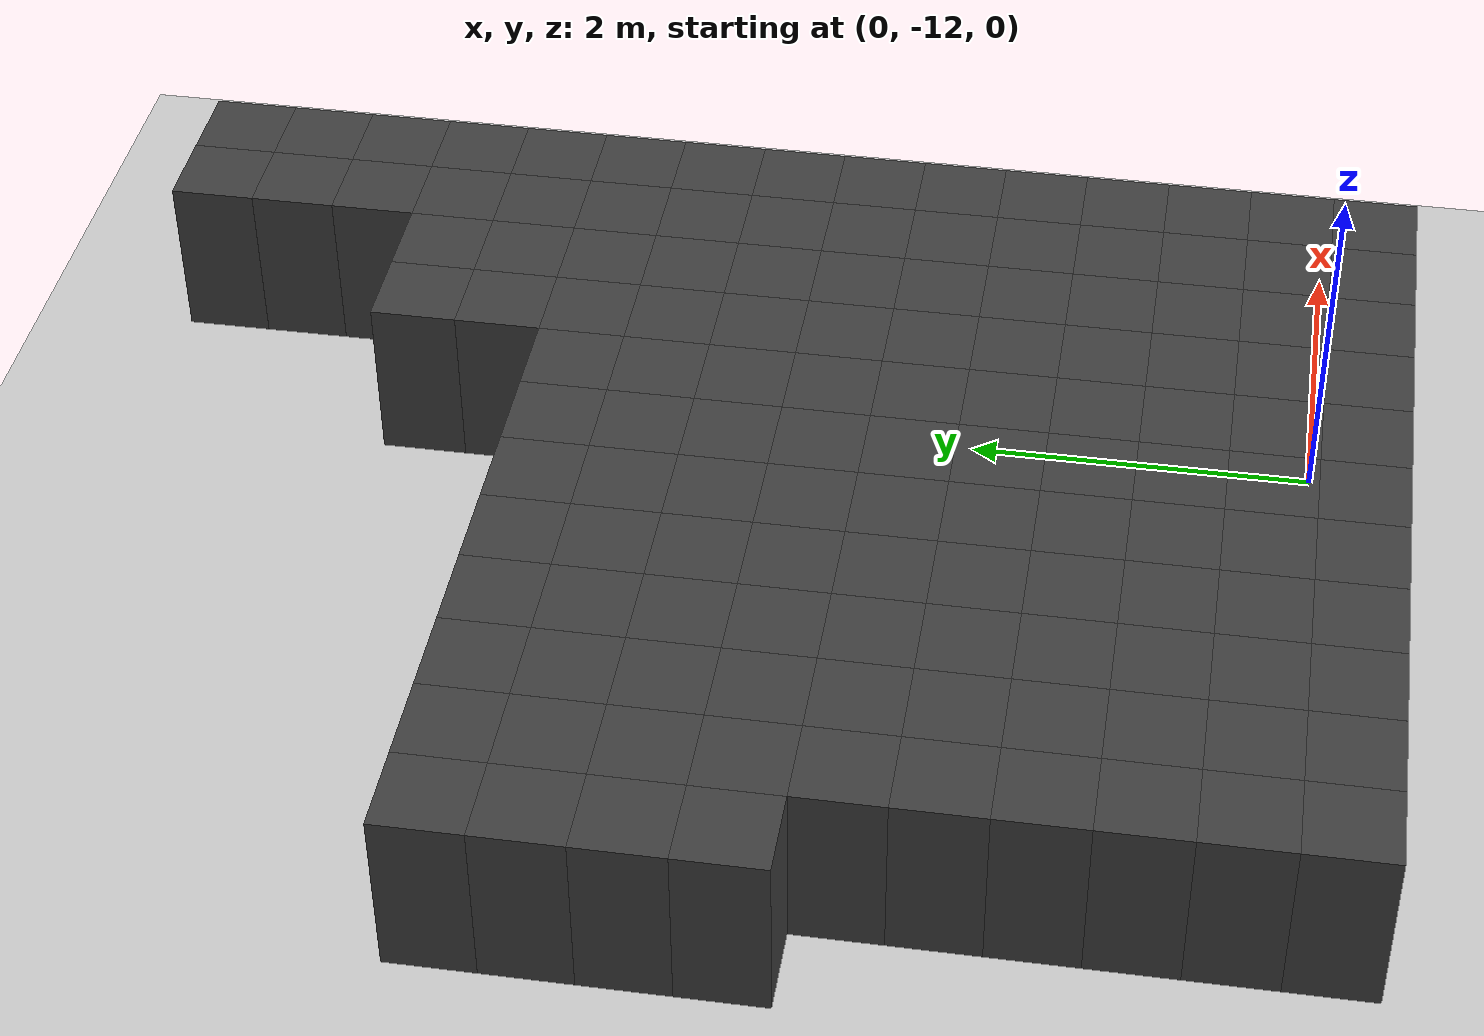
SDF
<sdf version="1.7">
 <world name="map_14735">
  <model name="ground_plane">
   <static>true</static>
   <link name="link">
    <collision name="collision">
     <geometry><plane><normal>0 0 1</normal><size>200 200</size></plane></geometry>
    </collision>
    <visual name="visual">
     <geometry><plane><normal>0 0 1</normal><size>200 200</size></plane></geometry>
     <material><ambient>0.8 0.8 0.8 1</ambient><diffuse>0.8 0.8 0.8 1</diffuse></material>
    </visual>
   </link>
  </model>
  <model name="maze_environment">
   <static>true</static>
   <link name="wall_1157">
    <pose>0.750 -5.250 0.500 0 0 0</pose>
    <collision name="col"><geometry><box><size>0.5 0.5 1.0</size></box></geometry></collision>
    <visual name="vis">
     <geometry><box><size>0.5 0.5 1.0</size></box></geometry>
     <material><ambient>0.15 0.15 0.15 1</ambient><diffuse>0.25 0.25 0.25 1</diffuse></material>
    </visual>
   </link>
   <link name="wall_1158">
    <pose>1.250 -5.250 0.500 0 0 0</pose>
    <collision name="col"><geometry><box><size>0.5 0.5 1.0</size></box></geometry></collision>
    <visual name="vis">
     <geometry><box><size>0.5 0.5 1.0</size></box></geometry>
     <material><ambient>0.15 0.15 0.15 1</ambient><diffuse>0.25 0.25 0.25 1</diffuse></material>
    </visual>
   </link>
   <link name="wall_1195">
    <pose>0.750 -5.750 0.500 0 0 0</pose>
    <collision name="col"><geometry><box><size>0.5 0.5 1.0</size></box></geometry></collision>
    <visual name="vis">
     <geometry><box><size>0.5 0.5 1.0</size></box></geometry>
     <material><ambient>0.15 0.15 0.15 1</ambient><diffuse>0.25 0.25 0.25 1</diffuse></material>
    </visual>
   </link>
   <link name="wall_1196">
    <pose>1.250 -5.750 0.500 0 0 0</pose>
    <collision name="col"><geometry><box><size>0.5 0.5 1.0</size></box></geometry></collision>
    <visual name="vis">
     <geometry><box><size>0.5 0.5 1.0</size></box></geometry>
     <material><ambient>0.15 0.15 0.15 1</ambient><diffuse>0.25 0.25 0.25 1</diffuse></material>
    </visual>
   </link>
   <link name="wall_1233">
    <pose>0.750 -6.250 0.500 0 0 0</pose>
    <collision name="col"><geometry><box><size>0.5 0.5 1.0</size></box></geometry></collision>
    <visual name="vis">
     <geometry><box><size>0.5 0.5 1.0</size></box></geometry>
     <material><ambient>0.15 0.15 0.15 1</ambient><diffuse>0.25 0.25 0.25 1</diffuse></material>
    </visual>
   </link>
   <link name="wall_1234">
    <pose>1.250 -6.250 0.500 0 0 0</pose>
    <collision name="col"><geometry><box><size>0.5 0.5 1.0</size></box></geometry></collision>
    <visual name="vis">
     <geometry><box><size>0.5 0.5 1.0</size></box></geometry>
     <material><ambient>0.15 0.15 0.15 1</ambient><diffuse>0.25 0.25 0.25 1</diffuse></material>
    </visual>
   </link>
   <link name="wall_1271">
    <pose>-0.250 -6.750 0.500 0 0 0</pose>
    <collision name="col"><geometry><box><size>0.5 0.5 1.0</size></box></geometry></collision>
    <visual name="vis">
     <geometry><box><size>0.5 0.5 1.0</size></box></geometry>
     <material><ambient>0.15 0.15 0.15 1</ambient><diffuse>0.25 0.25 0.25 1</diffuse></material>
    </visual>
   </link>
   <link name="wall_1272">
    <pose>0.250 -6.750 0.500 0 0 0</pose>
    <collision name="col"><geometry><box><size>0.5 0.5 1.0</size></box></geometry></collision>
    <visual name="vis">
     <geometry><box><size>0.5 0.5 1.0</size></box></geometry>
     <material><ambient>0.15 0.15 0.15 1</ambient><diffuse>0.25 0.25 0.25 1</diffuse></material>
    </visual>
   </link>
   <link name="wall_1273">
    <pose>0.750 -6.750 0.500 0 0 0</pose>
    <collision name="col"><geometry><box><size>0.5 0.5 1.0</size></box></geometry></collision>
    <visual name="vis">
     <geometry><box><size>0.5 0.5 1.0</size></box></geometry>
     <material><ambient>0.15 0.15 0.15 1</ambient><diffuse>0.25 0.25 0.25 1</diffuse></material>
    </visual>
   </link>
   <link name="wall_1274">
    <pose>1.250 -6.750 0.500 0 0 0</pose>
    <collision name="col"><geometry><box><size>0.5 0.5 1.0</size></box></geometry></collision>
    <visual name="vis">
     <geometry><box><size>0.5 0.5 1.0</size></box></geometry>
     <material><ambient>0.15 0.15 0.15 1</ambient><diffuse>0.25 0.25 0.25 1</diffuse></material>
    </visual>
   </link>
   <link name="wall_1312">
    <pose>-0.250 -7.250 0.500 0 0 0</pose>
    <collision name="col"><geometry><box><size>0.5 0.5 1.0</size></box></geometry></collision>
    <visual name="vis">
     <geometry><box><size>0.5 0.5 1.0</size></box></geometry>
     <material><ambient>0.15 0.15 0.15 1</ambient><diffuse>0.25 0.25 0.25 1</diffuse></material>
    </visual>
   </link>
   <link name="wall_1313">
    <pose>0.250 -7.250 0.500 0 0 0</pose>
    <collision name="col"><geometry><box><size>0.5 0.5 1.0</size></box></geometry></collision>
    <visual name="vis">
     <geometry><box><size>0.5 0.5 1.0</size></box></geometry>
     <material><ambient>0.15 0.15 0.15 1</ambient><diffuse>0.25 0.25 0.25 1</diffuse></material>
    </visual>
   </link>
   <link name="wall_1314">
    <pose>0.750 -7.250 0.500 0 0 0</pose>
    <collision name="col"><geometry><box><size>0.5 0.5 1.0</size></box></geometry></collision>
    <visual name="vis">
     <geometry><box><size>0.5 0.5 1.0</size></box></geometry>
     <material><ambient>0.15 0.15 0.15 1</ambient><diffuse>0.25 0.25 0.25 1</diffuse></material>
    </visual>
   </link>
   <link name="wall_1315">
    <pose>1.250 -7.250 0.500 0 0 0</pose>
    <collision name="col"><geometry><box><size>0.5 0.5 1.0</size></box></geometry></collision>
    <visual name="vis">
     <geometry><box><size>0.5 0.5 1.0</size></box></geometry>
     <material><ambient>0.15 0.15 0.15 1</ambient><diffuse>0.25 0.25 0.25 1</diffuse></material>
    </visual>
   </link>
   <link name="wall_1353">
    <pose>-4.250 -7.750 0.500 0 0 0</pose>
    <collision name="col"><geometry><box><size>0.5 0.5 1.0</size></box></geometry></collision>
    <visual name="vis">
     <geometry><box><size>0.5 0.5 1.0</size></box></geometry>
     <material><ambient>0.15 0.15 0.15 1</ambient><diffuse>0.25 0.25 0.25 1</diffuse></material>
    </visual>
   </link>
   <link name="wall_1354">
    <pose>-3.750 -7.750 0.500 0 0 0</pose>
    <collision name="col"><geometry><box><size>0.5 0.5 1.0</size></box></geometry></collision>
    <visual name="vis">
     <geometry><box><size>0.5 0.5 1.0</size></box></geometry>
     <material><ambient>0.15 0.15 0.15 1</ambient><diffuse>0.25 0.25 0.25 1</diffuse></material>
    </visual>
   </link>
   <link name="wall_1355">
    <pose>-3.250 -7.750 0.500 0 0 0</pose>
    <collision name="col"><geometry><box><size>0.5 0.5 1.0</size></box></geometry></collision>
    <visual name="vis">
     <geometry><box><size>0.5 0.5 1.0</size></box></geometry>
     <material><ambient>0.15 0.15 0.15 1</ambient><diffuse>0.25 0.25 0.25 1</diffuse></material>
    </visual>
   </link>
   <link name="wall_1356">
    <pose>-2.750 -7.750 0.500 0 0 0</pose>
    <collision name="col"><geometry><box><size>0.5 0.5 1.0</size></box></geometry></collision>
    <visual name="vis">
     <geometry><box><size>0.5 0.5 1.0</size></box></geometry>
     <material><ambient>0.15 0.15 0.15 1</ambient><diffuse>0.25 0.25 0.25 1</diffuse></material>
    </visual>
   </link>
   <link name="wall_1357">
    <pose>-2.250 -7.750 0.500 0 0 0</pose>
    <collision name="col"><geometry><box><size>0.5 0.5 1.0</size></box></geometry></collision>
    <visual name="vis">
     <geometry><box><size>0.5 0.5 1.0</size></box></geometry>
     <material><ambient>0.15 0.15 0.15 1</ambient><diffuse>0.25 0.25 0.25 1</diffuse></material>
    </visual>
   </link>
   <link name="wall_1358">
    <pose>-1.750 -7.750 0.500 0 0 0</pose>
    <collision name="col"><geometry><box><size>0.5 0.5 1.0</size></box></geometry></collision>
    <visual name="vis">
     <geometry><box><size>0.5 0.5 1.0</size></box></geometry>
     <material><ambient>0.15 0.15 0.15 1</ambient><diffuse>0.25 0.25 0.25 1</diffuse></material>
    </visual>
   </link>
   <link name="wall_1359">
    <pose>-1.250 -7.750 0.500 0 0 0</pose>
    <collision name="col"><geometry><box><size>0.5 0.5 1.0</size></box></geometry></collision>
    <visual name="vis">
     <geometry><box><size>0.5 0.5 1.0</size></box></geometry>
     <material><ambient>0.15 0.15 0.15 1</ambient><diffuse>0.25 0.25 0.25 1</diffuse></material>
    </visual>
   </link>
   <link name="wall_1360">
    <pose>-0.750 -7.750 0.500 0 0 0</pose>
    <collision name="col"><geometry><box><size>0.5 0.5 1.0</size></box></geometry></collision>
    <visual name="vis">
     <geometry><box><size>0.5 0.5 1.0</size></box></geometry>
     <material><ambient>0.15 0.15 0.15 1</ambient><diffuse>0.25 0.25 0.25 1</diffuse></material>
    </visual>
   </link>
   <link name="wall_1361">
    <pose>-0.250 -7.750 0.500 0 0 0</pose>
    <collision name="col"><geometry><box><size>0.5 0.5 1.0</size></box></geometry></collision>
    <visual name="vis">
     <geometry><box><size>0.5 0.5 1.0</size></box></geometry>
     <material><ambient>0.15 0.15 0.15 1</ambient><diffuse>0.25 0.25 0.25 1</diffuse></material>
    </visual>
   </link>
   <link name="wall_1362">
    <pose>0.250 -7.750 0.500 0 0 0</pose>
    <collision name="col"><geometry><box><size>0.5 0.5 1.0</size></box></geometry></collision>
    <visual name="vis">
     <geometry><box><size>0.5 0.5 1.0</size></box></geometry>
     <material><ambient>0.15 0.15 0.15 1</ambient><diffuse>0.25 0.25 0.25 1</diffuse></material>
    </visual>
   </link>
   <link name="wall_1363">
    <pose>0.750 -7.750 0.500 0 0 0</pose>
    <collision name="col"><geometry><box><size>0.5 0.5 1.0</size></box></geometry></collision>
    <visual name="vis">
     <geometry><box><size>0.5 0.5 1.0</size></box></geometry>
     <material><ambient>0.15 0.15 0.15 1</ambient><diffuse>0.25 0.25 0.25 1</diffuse></material>
    </visual>
   </link>
   <link name="wall_1364">
    <pose>1.250 -7.750 0.500 0 0 0</pose>
    <collision name="col"><geometry><box><size>0.5 0.5 1.0</size></box></geometry></collision>
    <visual name="vis">
     <geometry><box><size>0.5 0.5 1.0</size></box></geometry>
     <material><ambient>0.15 0.15 0.15 1</ambient><diffuse>0.25 0.25 0.25 1</diffuse></material>
    </visual>
   </link>
   <link name="wall_1395">
    <pose>-4.250 -8.250 0.500 0 0 0</pose>
    <collision name="col"><geometry><box><size>0.5 0.5 1.0</size></box></geometry></collision>
    <visual name="vis">
     <geometry><box><size>0.5 0.5 1.0</size></box></geometry>
     <material><ambient>0.15 0.15 0.15 1</ambient><diffuse>0.25 0.25 0.25 1</diffuse></material>
    </visual>
   </link>
   <link name="wall_1396">
    <pose>-3.750 -8.250 0.500 0 0 0</pose>
    <collision name="col"><geometry><box><size>0.5 0.5 1.0</size></box></geometry></collision>
    <visual name="vis">
     <geometry><box><size>0.5 0.5 1.0</size></box></geometry>
     <material><ambient>0.15 0.15 0.15 1</ambient><diffuse>0.25 0.25 0.25 1</diffuse></material>
    </visual>
   </link>
   <link name="wall_1397">
    <pose>-3.250 -8.250 0.500 0 0 0</pose>
    <collision name="col"><geometry><box><size>0.5 0.5 1.0</size></box></geometry></collision>
    <visual name="vis">
     <geometry><box><size>0.5 0.5 1.0</size></box></geometry>
     <material><ambient>0.15 0.15 0.15 1</ambient><diffuse>0.25 0.25 0.25 1</diffuse></material>
    </visual>
   </link>
   <link name="wall_1398">
    <pose>-2.750 -8.250 0.500 0 0 0</pose>
    <collision name="col"><geometry><box><size>0.5 0.5 1.0</size></box></geometry></collision>
    <visual name="vis">
     <geometry><box><size>0.5 0.5 1.0</size></box></geometry>
     <material><ambient>0.15 0.15 0.15 1</ambient><diffuse>0.25 0.25 0.25 1</diffuse></material>
    </visual>
   </link>
   <link name="wall_1399">
    <pose>-2.250 -8.250 0.500 0 0 0</pose>
    <collision name="col"><geometry><box><size>0.5 0.5 1.0</size></box></geometry></collision>
    <visual name="vis">
     <geometry><box><size>0.5 0.5 1.0</size></box></geometry>
     <material><ambient>0.15 0.15 0.15 1</ambient><diffuse>0.25 0.25 0.25 1</diffuse></material>
    </visual>
   </link>
   <link name="wall_1400">
    <pose>-1.750 -8.250 0.500 0 0 0</pose>
    <collision name="col"><geometry><box><size>0.5 0.5 1.0</size></box></geometry></collision>
    <visual name="vis">
     <geometry><box><size>0.5 0.5 1.0</size></box></geometry>
     <material><ambient>0.15 0.15 0.15 1</ambient><diffuse>0.25 0.25 0.25 1</diffuse></material>
    </visual>
   </link>
   <link name="wall_1401">
    <pose>-1.250 -8.250 0.500 0 0 0</pose>
    <collision name="col"><geometry><box><size>0.5 0.5 1.0</size></box></geometry></collision>
    <visual name="vis">
     <geometry><box><size>0.5 0.5 1.0</size></box></geometry>
     <material><ambient>0.15 0.15 0.15 1</ambient><diffuse>0.25 0.25 0.25 1</diffuse></material>
    </visual>
   </link>
   <link name="wall_1402">
    <pose>-0.750 -8.250 0.500 0 0 0</pose>
    <collision name="col"><geometry><box><size>0.5 0.5 1.0</size></box></geometry></collision>
    <visual name="vis">
     <geometry><box><size>0.5 0.5 1.0</size></box></geometry>
     <material><ambient>0.15 0.15 0.15 1</ambient><diffuse>0.25 0.25 0.25 1</diffuse></material>
    </visual>
   </link>
   <link name="wall_1403">
    <pose>-0.250 -8.250 0.500 0 0 0</pose>
    <collision name="col"><geometry><box><size>0.5 0.5 1.0</size></box></geometry></collision>
    <visual name="vis">
     <geometry><box><size>0.5 0.5 1.0</size></box></geometry>
     <material><ambient>0.15 0.15 0.15 1</ambient><diffuse>0.25 0.25 0.25 1</diffuse></material>
    </visual>
   </link>
   <link name="wall_1404">
    <pose>0.250 -8.250 0.500 0 0 0</pose>
    <collision name="col"><geometry><box><size>0.5 0.5 1.0</size></box></geometry></collision>
    <visual name="vis">
     <geometry><box><size>0.5 0.5 1.0</size></box></geometry>
     <material><ambient>0.15 0.15 0.15 1</ambient><diffuse>0.25 0.25 0.25 1</diffuse></material>
    </visual>
   </link>
   <link name="wall_1405">
    <pose>0.750 -8.250 0.500 0 0 0</pose>
    <collision name="col"><geometry><box><size>0.5 0.5 1.0</size></box></geometry></collision>
    <visual name="vis">
     <geometry><box><size>0.5 0.5 1.0</size></box></geometry>
     <material><ambient>0.15 0.15 0.15 1</ambient><diffuse>0.25 0.25 0.25 1</diffuse></material>
    </visual>
   </link>
   <link name="wall_1406">
    <pose>1.250 -8.250 0.500 0 0 0</pose>
    <collision name="col"><geometry><box><size>0.5 0.5 1.0</size></box></geometry></collision>
    <visual name="vis">
     <geometry><box><size>0.5 0.5 1.0</size></box></geometry>
     <material><ambient>0.15 0.15 0.15 1</ambient><diffuse>0.25 0.25 0.25 1</diffuse></material>
    </visual>
   </link>
   <link name="wall_1437">
    <pose>-4.250 -8.750 0.500 0 0 0</pose>
    <collision name="col"><geometry><box><size>0.5 0.5 1.0</size></box></geometry></collision>
    <visual name="vis">
     <geometry><box><size>0.5 0.5 1.0</size></box></geometry>
     <material><ambient>0.15 0.15 0.15 1</ambient><diffuse>0.25 0.25 0.25 1</diffuse></material>
    </visual>
   </link>
   <link name="wall_1438">
    <pose>-3.750 -8.750 0.500 0 0 0</pose>
    <collision name="col"><geometry><box><size>0.5 0.5 1.0</size></box></geometry></collision>
    <visual name="vis">
     <geometry><box><size>0.5 0.5 1.0</size></box></geometry>
     <material><ambient>0.15 0.15 0.15 1</ambient><diffuse>0.25 0.25 0.25 1</diffuse></material>
    </visual>
   </link>
   <link name="wall_1439">
    <pose>-3.250 -8.750 0.500 0 0 0</pose>
    <collision name="col"><geometry><box><size>0.5 0.5 1.0</size></box></geometry></collision>
    <visual name="vis">
     <geometry><box><size>0.5 0.5 1.0</size></box></geometry>
     <material><ambient>0.15 0.15 0.15 1</ambient><diffuse>0.25 0.25 0.25 1</diffuse></material>
    </visual>
   </link>
   <link name="wall_1440">
    <pose>-2.750 -8.750 0.500 0 0 0</pose>
    <collision name="col"><geometry><box><size>0.5 0.5 1.0</size></box></geometry></collision>
    <visual name="vis">
     <geometry><box><size>0.5 0.5 1.0</size></box></geometry>
     <material><ambient>0.15 0.15 0.15 1</ambient><diffuse>0.25 0.25 0.25 1</diffuse></material>
    </visual>
   </link>
   <link name="wall_1441">
    <pose>-2.250 -8.750 0.500 0 0 0</pose>
    <collision name="col"><geometry><box><size>0.5 0.5 1.0</size></box></geometry></collision>
    <visual name="vis">
     <geometry><box><size>0.5 0.5 1.0</size></box></geometry>
     <material><ambient>0.15 0.15 0.15 1</ambient><diffuse>0.25 0.25 0.25 1</diffuse></material>
    </visual>
   </link>
   <link name="wall_1442">
    <pose>-1.750 -8.750 0.500 0 0 0</pose>
    <collision name="col"><geometry><box><size>0.5 0.5 1.0</size></box></geometry></collision>
    <visual name="vis">
     <geometry><box><size>0.5 0.5 1.0</size></box></geometry>
     <material><ambient>0.15 0.15 0.15 1</ambient><diffuse>0.25 0.25 0.25 1</diffuse></material>
    </visual>
   </link>
   <link name="wall_1443">
    <pose>-1.250 -8.750 0.500 0 0 0</pose>
    <collision name="col"><geometry><box><size>0.5 0.5 1.0</size></box></geometry></collision>
    <visual name="vis">
     <geometry><box><size>0.5 0.5 1.0</size></box></geometry>
     <material><ambient>0.15 0.15 0.15 1</ambient><diffuse>0.25 0.25 0.25 1</diffuse></material>
    </visual>
   </link>
   <link name="wall_1444">
    <pose>-0.750 -8.750 0.500 0 0 0</pose>
    <collision name="col"><geometry><box><size>0.5 0.5 1.0</size></box></geometry></collision>
    <visual name="vis">
     <geometry><box><size>0.5 0.5 1.0</size></box></geometry>
     <material><ambient>0.15 0.15 0.15 1</ambient><diffuse>0.25 0.25 0.25 1</diffuse></material>
    </visual>
   </link>
   <link name="wall_1445">
    <pose>-0.250 -8.750 0.500 0 0 0</pose>
    <collision name="col"><geometry><box><size>0.5 0.5 1.0</size></box></geometry></collision>
    <visual name="vis">
     <geometry><box><size>0.5 0.5 1.0</size></box></geometry>
     <material><ambient>0.15 0.15 0.15 1</ambient><diffuse>0.25 0.25 0.25 1</diffuse></material>
    </visual>
   </link>
   <link name="wall_1446">
    <pose>0.250 -8.750 0.500 0 0 0</pose>
    <collision name="col"><geometry><box><size>0.5 0.5 1.0</size></box></geometry></collision>
    <visual name="vis">
     <geometry><box><size>0.5 0.5 1.0</size></box></geometry>
     <material><ambient>0.15 0.15 0.15 1</ambient><diffuse>0.25 0.25 0.25 1</diffuse></material>
    </visual>
   </link>
   <link name="wall_1447">
    <pose>0.750 -8.750 0.500 0 0 0</pose>
    <collision name="col"><geometry><box><size>0.5 0.5 1.0</size></box></geometry></collision>
    <visual name="vis">
     <geometry><box><size>0.5 0.5 1.0</size></box></geometry>
     <material><ambient>0.15 0.15 0.15 1</ambient><diffuse>0.25 0.25 0.25 1</diffuse></material>
    </visual>
   </link>
   <link name="wall_1448">
    <pose>1.250 -8.750 0.500 0 0 0</pose>
    <collision name="col"><geometry><box><size>0.5 0.5 1.0</size></box></geometry></collision>
    <visual name="vis">
     <geometry><box><size>0.5 0.5 1.0</size></box></geometry>
     <material><ambient>0.15 0.15 0.15 1</ambient><diffuse>0.25 0.25 0.25 1</diffuse></material>
    </visual>
   </link>
   <link name="wall_1479">
    <pose>-4.250 -9.250 0.500 0 0 0</pose>
    <collision name="col"><geometry><box><size>0.5 0.5 1.0</size></box></geometry></collision>
    <visual name="vis">
     <geometry><box><size>0.5 0.5 1.0</size></box></geometry>
     <material><ambient>0.15 0.15 0.15 1</ambient><diffuse>0.25 0.25 0.25 1</diffuse></material>
    </visual>
   </link>
   <link name="wall_1480">
    <pose>-3.750 -9.250 0.500 0 0 0</pose>
    <collision name="col"><geometry><box><size>0.5 0.5 1.0</size></box></geometry></collision>
    <visual name="vis">
     <geometry><box><size>0.5 0.5 1.0</size></box></geometry>
     <material><ambient>0.15 0.15 0.15 1</ambient><diffuse>0.25 0.25 0.25 1</diffuse></material>
    </visual>
   </link>
   <link name="wall_1481">
    <pose>-3.250 -9.250 0.500 0 0 0</pose>
    <collision name="col"><geometry><box><size>0.5 0.5 1.0</size></box></geometry></collision>
    <visual name="vis">
     <geometry><box><size>0.5 0.5 1.0</size></box></geometry>
     <material><ambient>0.15 0.15 0.15 1</ambient><diffuse>0.25 0.25 0.25 1</diffuse></material>
    </visual>
   </link>
   <link name="wall_1482">
    <pose>-2.750 -9.250 0.500 0 0 0</pose>
    <collision name="col"><geometry><box><size>0.5 0.5 1.0</size></box></geometry></collision>
    <visual name="vis">
     <geometry><box><size>0.5 0.5 1.0</size></box></geometry>
     <material><ambient>0.15 0.15 0.15 1</ambient><diffuse>0.25 0.25 0.25 1</diffuse></material>
    </visual>
   </link>
   <link name="wall_1483">
    <pose>-2.250 -9.250 0.500 0 0 0</pose>
    <collision name="col"><geometry><box><size>0.5 0.5 1.0</size></box></geometry></collision>
    <visual name="vis">
     <geometry><box><size>0.5 0.5 1.0</size></box></geometry>
     <material><ambient>0.15 0.15 0.15 1</ambient><diffuse>0.25 0.25 0.25 1</diffuse></material>
    </visual>
   </link>
   <link name="wall_1484">
    <pose>-1.750 -9.250 0.500 0 0 0</pose>
    <collision name="col"><geometry><box><size>0.5 0.5 1.0</size></box></geometry></collision>
    <visual name="vis">
     <geometry><box><size>0.5 0.5 1.0</size></box></geometry>
     <material><ambient>0.15 0.15 0.15 1</ambient><diffuse>0.25 0.25 0.25 1</diffuse></material>
    </visual>
   </link>
   <link name="wall_1485">
    <pose>-1.250 -9.250 0.500 0 0 0</pose>
    <collision name="col"><geometry><box><size>0.5 0.5 1.0</size></box></geometry></collision>
    <visual name="vis">
     <geometry><box><size>0.5 0.5 1.0</size></box></geometry>
     <material><ambient>0.15 0.15 0.15 1</ambient><diffuse>0.25 0.25 0.25 1</diffuse></material>
    </visual>
   </link>
   <link name="wall_1486">
    <pose>-0.750 -9.250 0.500 0 0 0</pose>
    <collision name="col"><geometry><box><size>0.5 0.5 1.0</size></box></geometry></collision>
    <visual name="vis">
     <geometry><box><size>0.5 0.5 1.0</size></box></geometry>
     <material><ambient>0.15 0.15 0.15 1</ambient><diffuse>0.25 0.25 0.25 1</diffuse></material>
    </visual>
   </link>
   <link name="wall_1487">
    <pose>-0.250 -9.250 0.500 0 0 0</pose>
    <collision name="col"><geometry><box><size>0.5 0.5 1.0</size></box></geometry></collision>
    <visual name="vis">
     <geometry><box><size>0.5 0.5 1.0</size></box></geometry>
     <material><ambient>0.15 0.15 0.15 1</ambient><diffuse>0.25 0.25 0.25 1</diffuse></material>
    </visual>
   </link>
   <link name="wall_1488">
    <pose>0.250 -9.250 0.500 0 0 0</pose>
    <collision name="col"><geometry><box><size>0.5 0.5 1.0</size></box></geometry></collision>
    <visual name="vis">
     <geometry><box><size>0.5 0.5 1.0</size></box></geometry>
     <material><ambient>0.15 0.15 0.15 1</ambient><diffuse>0.25 0.25 0.25 1</diffuse></material>
    </visual>
   </link>
   <link name="wall_1489">
    <pose>0.750 -9.250 0.500 0 0 0</pose>
    <collision name="col"><geometry><box><size>0.5 0.5 1.0</size></box></geometry></collision>
    <visual name="vis">
     <geometry><box><size>0.5 0.5 1.0</size></box></geometry>
     <material><ambient>0.15 0.15 0.15 1</ambient><diffuse>0.25 0.25 0.25 1</diffuse></material>
    </visual>
   </link>
   <link name="wall_1490">
    <pose>1.250 -9.250 0.500 0 0 0</pose>
    <collision name="col"><geometry><box><size>0.5 0.5 1.0</size></box></geometry></collision>
    <visual name="vis">
     <geometry><box><size>0.5 0.5 1.0</size></box></geometry>
     <material><ambient>0.15 0.15 0.15 1</ambient><diffuse>0.25 0.25 0.25 1</diffuse></material>
    </visual>
   </link>
   <link name="wall_1522">
    <pose>-3.750 -9.750 0.500 0 0 0</pose>
    <collision name="col"><geometry><box><size>0.5 0.5 1.0</size></box></geometry></collision>
    <visual name="vis">
     <geometry><box><size>0.5 0.5 1.0</size></box></geometry>
     <material><ambient>0.15 0.15 0.15 1</ambient><diffuse>0.25 0.25 0.25 1</diffuse></material>
    </visual>
   </link>
   <link name="wall_1523">
    <pose>-3.250 -9.750 0.500 0 0 0</pose>
    <collision name="col"><geometry><box><size>0.5 0.5 1.0</size></box></geometry></collision>
    <visual name="vis">
     <geometry><box><size>0.5 0.5 1.0</size></box></geometry>
     <material><ambient>0.15 0.15 0.15 1</ambient><diffuse>0.25 0.25 0.25 1</diffuse></material>
    </visual>
   </link>
   <link name="wall_1524">
    <pose>-2.750 -9.750 0.500 0 0 0</pose>
    <collision name="col"><geometry><box><size>0.5 0.5 1.0</size></box></geometry></collision>
    <visual name="vis">
     <geometry><box><size>0.5 0.5 1.0</size></box></geometry>
     <material><ambient>0.15 0.15 0.15 1</ambient><diffuse>0.25 0.25 0.25 1</diffuse></material>
    </visual>
   </link>
   <link name="wall_1525">
    <pose>-2.250 -9.750 0.500 0 0 0</pose>
    <collision name="col"><geometry><box><size>0.5 0.5 1.0</size></box></geometry></collision>
    <visual name="vis">
     <geometry><box><size>0.5 0.5 1.0</size></box></geometry>
     <material><ambient>0.15 0.15 0.15 1</ambient><diffuse>0.25 0.25 0.25 1</diffuse></material>
    </visual>
   </link>
   <link name="wall_1526">
    <pose>-1.750 -9.750 0.500 0 0 0</pose>
    <collision name="col"><geometry><box><size>0.5 0.5 1.0</size></box></geometry></collision>
    <visual name="vis">
     <geometry><box><size>0.5 0.5 1.0</size></box></geometry>
     <material><ambient>0.15 0.15 0.15 1</ambient><diffuse>0.25 0.25 0.25 1</diffuse></material>
    </visual>
   </link>
   <link name="wall_1527">
    <pose>-1.250 -9.750 0.500 0 0 0</pose>
    <collision name="col"><geometry><box><size>0.5 0.5 1.0</size></box></geometry></collision>
    <visual name="vis">
     <geometry><box><size>0.5 0.5 1.0</size></box></geometry>
     <material><ambient>0.15 0.15 0.15 1</ambient><diffuse>0.25 0.25 0.25 1</diffuse></material>
    </visual>
   </link>
   <link name="wall_1528">
    <pose>-0.750 -9.750 0.500 0 0 0</pose>
    <collision name="col"><geometry><box><size>0.5 0.5 1.0</size></box></geometry></collision>
    <visual name="vis">
     <geometry><box><size>0.5 0.5 1.0</size></box></geometry>
     <material><ambient>0.15 0.15 0.15 1</ambient><diffuse>0.25 0.25 0.25 1</diffuse></material>
    </visual>
   </link>
   <link name="wall_1529">
    <pose>-0.250 -9.750 0.500 0 0 0</pose>
    <collision name="col"><geometry><box><size>0.5 0.5 1.0</size></box></geometry></collision>
    <visual name="vis">
     <geometry><box><size>0.5 0.5 1.0</size></box></geometry>
     <material><ambient>0.15 0.15 0.15 1</ambient><diffuse>0.25 0.25 0.25 1</diffuse></material>
    </visual>
   </link>
   <link name="wall_1530">
    <pose>0.250 -9.750 0.500 0 0 0</pose>
    <collision name="col"><geometry><box><size>0.5 0.5 1.0</size></box></geometry></collision>
    <visual name="vis">
     <geometry><box><size>0.5 0.5 1.0</size></box></geometry>
     <material><ambient>0.15 0.15 0.15 1</ambient><diffuse>0.25 0.25 0.25 1</diffuse></material>
    </visual>
   </link>
   <link name="wall_1531">
    <pose>0.750 -9.750 0.500 0 0 0</pose>
    <collision name="col"><geometry><box><size>0.5 0.5 1.0</size></box></geometry></collision>
    <visual name="vis">
     <geometry><box><size>0.5 0.5 1.0</size></box></geometry>
     <material><ambient>0.15 0.15 0.15 1</ambient><diffuse>0.25 0.25 0.25 1</diffuse></material>
    </visual>
   </link>
   <link name="wall_1532">
    <pose>1.250 -9.750 0.500 0 0 0</pose>
    <collision name="col"><geometry><box><size>0.5 0.5 1.0</size></box></geometry></collision>
    <visual name="vis">
     <geometry><box><size>0.5 0.5 1.0</size></box></geometry>
     <material><ambient>0.15 0.15 0.15 1</ambient><diffuse>0.25 0.25 0.25 1</diffuse></material>
    </visual>
   </link>
   <link name="wall_1571">
    <pose>-3.750 -10.250 0.500 0 0 0</pose>
    <collision name="col"><geometry><box><size>0.5 0.5 1.0</size></box></geometry></collision>
    <visual name="vis">
     <geometry><box><size>0.5 0.5 1.0</size></box></geometry>
     <material><ambient>0.15 0.15 0.15 1</ambient><diffuse>0.25 0.25 0.25 1</diffuse></material>
    </visual>
   </link>
   <link name="wall_1572">
    <pose>-3.250 -10.250 0.500 0 0 0</pose>
    <collision name="col"><geometry><box><size>0.5 0.5 1.0</size></box></geometry></collision>
    <visual name="vis">
     <geometry><box><size>0.5 0.5 1.0</size></box></geometry>
     <material><ambient>0.15 0.15 0.15 1</ambient><diffuse>0.25 0.25 0.25 1</diffuse></material>
    </visual>
   </link>
   <link name="wall_1573">
    <pose>-2.750 -10.250 0.500 0 0 0</pose>
    <collision name="col"><geometry><box><size>0.5 0.5 1.0</size></box></geometry></collision>
    <visual name="vis">
     <geometry><box><size>0.5 0.5 1.0</size></box></geometry>
     <material><ambient>0.15 0.15 0.15 1</ambient><diffuse>0.25 0.25 0.25 1</diffuse></material>
    </visual>
   </link>
   <link name="wall_1574">
    <pose>-2.250 -10.250 0.500 0 0 0</pose>
    <collision name="col"><geometry><box><size>0.5 0.5 1.0</size></box></geometry></collision>
    <visual name="vis">
     <geometry><box><size>0.5 0.5 1.0</size></box></geometry>
     <material><ambient>0.15 0.15 0.15 1</ambient><diffuse>0.25 0.25 0.25 1</diffuse></material>
    </visual>
   </link>
   <link name="wall_1575">
    <pose>-1.750 -10.250 0.500 0 0 0</pose>
    <collision name="col"><geometry><box><size>0.5 0.5 1.0</size></box></geometry></collision>
    <visual name="vis">
     <geometry><box><size>0.5 0.5 1.0</size></box></geometry>
     <material><ambient>0.15 0.15 0.15 1</ambient><diffuse>0.25 0.25 0.25 1</diffuse></material>
    </visual>
   </link>
   <link name="wall_1576">
    <pose>-1.250 -10.250 0.500 0 0 0</pose>
    <collision name="col"><geometry><box><size>0.5 0.5 1.0</size></box></geometry></collision>
    <visual name="vis">
     <geometry><box><size>0.5 0.5 1.0</size></box></geometry>
     <material><ambient>0.15 0.15 0.15 1</ambient><diffuse>0.25 0.25 0.25 1</diffuse></material>
    </visual>
   </link>
   <link name="wall_1577">
    <pose>-0.750 -10.250 0.500 0 0 0</pose>
    <collision name="col"><geometry><box><size>0.5 0.5 1.0</size></box></geometry></collision>
    <visual name="vis">
     <geometry><box><size>0.5 0.5 1.0</size></box></geometry>
     <material><ambient>0.15 0.15 0.15 1</ambient><diffuse>0.25 0.25 0.25 1</diffuse></material>
    </visual>
   </link>
   <link name="wall_1578">
    <pose>-0.250 -10.250 0.500 0 0 0</pose>
    <collision name="col"><geometry><box><size>0.5 0.5 1.0</size></box></geometry></collision>
    <visual name="vis">
     <geometry><box><size>0.5 0.5 1.0</size></box></geometry>
     <material><ambient>0.15 0.15 0.15 1</ambient><diffuse>0.25 0.25 0.25 1</diffuse></material>
    </visual>
   </link>
   <link name="wall_1579">
    <pose>0.250 -10.250 0.500 0 0 0</pose>
    <collision name="col"><geometry><box><size>0.5 0.5 1.0</size></box></geometry></collision>
    <visual name="vis">
     <geometry><box><size>0.5 0.5 1.0</size></box></geometry>
     <material><ambient>0.15 0.15 0.15 1</ambient><diffuse>0.25 0.25 0.25 1</diffuse></material>
    </visual>
   </link>
   <link name="wall_1580">
    <pose>0.750 -10.250 0.500 0 0 0</pose>
    <collision name="col"><geometry><box><size>0.5 0.5 1.0</size></box></geometry></collision>
    <visual name="vis">
     <geometry><box><size>0.5 0.5 1.0</size></box></geometry>
     <material><ambient>0.15 0.15 0.15 1</ambient><diffuse>0.25 0.25 0.25 1</diffuse></material>
    </visual>
   </link>
   <link name="wall_1581">
    <pose>1.250 -10.250 0.500 0 0 0</pose>
    <collision name="col"><geometry><box><size>0.5 0.5 1.0</size></box></geometry></collision>
    <visual name="vis">
     <geometry><box><size>0.5 0.5 1.0</size></box></geometry>
     <material><ambient>0.15 0.15 0.15 1</ambient><diffuse>0.25 0.25 0.25 1</diffuse></material>
    </visual>
   </link>
   <link name="wall_1620">
    <pose>-3.750 -10.750 0.500 0 0 0</pose>
    <collision name="col"><geometry><box><size>0.5 0.5 1.0</size></box></geometry></collision>
    <visual name="vis">
     <geometry><box><size>0.5 0.5 1.0</size></box></geometry>
     <material><ambient>0.15 0.15 0.15 1</ambient><diffuse>0.25 0.25 0.25 1</diffuse></material>
    </visual>
   </link>
   <link name="wall_1621">
    <pose>-3.250 -10.750 0.500 0 0 0</pose>
    <collision name="col"><geometry><box><size>0.5 0.5 1.0</size></box></geometry></collision>
    <visual name="vis">
     <geometry><box><size>0.5 0.5 1.0</size></box></geometry>
     <material><ambient>0.15 0.15 0.15 1</ambient><diffuse>0.25 0.25 0.25 1</diffuse></material>
    </visual>
   </link>
   <link name="wall_1622">
    <pose>-2.750 -10.750 0.500 0 0 0</pose>
    <collision name="col"><geometry><box><size>0.5 0.5 1.0</size></box></geometry></collision>
    <visual name="vis">
     <geometry><box><size>0.5 0.5 1.0</size></box></geometry>
     <material><ambient>0.15 0.15 0.15 1</ambient><diffuse>0.25 0.25 0.25 1</diffuse></material>
    </visual>
   </link>
   <link name="wall_1623">
    <pose>-2.250 -10.750 0.500 0 0 0</pose>
    <collision name="col"><geometry><box><size>0.5 0.5 1.0</size></box></geometry></collision>
    <visual name="vis">
     <geometry><box><size>0.5 0.5 1.0</size></box></geometry>
     <material><ambient>0.15 0.15 0.15 1</ambient><diffuse>0.25 0.25 0.25 1</diffuse></material>
    </visual>
   </link>
   <link name="wall_1624">
    <pose>-1.750 -10.750 0.500 0 0 0</pose>
    <collision name="col"><geometry><box><size>0.5 0.5 1.0</size></box></geometry></collision>
    <visual name="vis">
     <geometry><box><size>0.5 0.5 1.0</size></box></geometry>
     <material><ambient>0.15 0.15 0.15 1</ambient><diffuse>0.25 0.25 0.25 1</diffuse></material>
    </visual>
   </link>
   <link name="wall_1625">
    <pose>-1.250 -10.750 0.500 0 0 0</pose>
    <collision name="col"><geometry><box><size>0.5 0.5 1.0</size></box></geometry></collision>
    <visual name="vis">
     <geometry><box><size>0.5 0.5 1.0</size></box></geometry>
     <material><ambient>0.15 0.15 0.15 1</ambient><diffuse>0.25 0.25 0.25 1</diffuse></material>
    </visual>
   </link>
   <link name="wall_1626">
    <pose>-0.750 -10.750 0.500 0 0 0</pose>
    <collision name="col"><geometry><box><size>0.5 0.5 1.0</size></box></geometry></collision>
    <visual name="vis">
     <geometry><box><size>0.5 0.5 1.0</size></box></geometry>
     <material><ambient>0.15 0.15 0.15 1</ambient><diffuse>0.25 0.25 0.25 1</diffuse></material>
    </visual>
   </link>
   <link name="wall_1627">
    <pose>-0.250 -10.750 0.500 0 0 0</pose>
    <collision name="col"><geometry><box><size>0.5 0.5 1.0</size></box></geometry></collision>
    <visual name="vis">
     <geometry><box><size>0.5 0.5 1.0</size></box></geometry>
     <material><ambient>0.15 0.15 0.15 1</ambient><diffuse>0.25 0.25 0.25 1</diffuse></material>
    </visual>
   </link>
   <link name="wall_1628">
    <pose>0.250 -10.750 0.500 0 0 0</pose>
    <collision name="col"><geometry><box><size>0.5 0.5 1.0</size></box></geometry></collision>
    <visual name="vis">
     <geometry><box><size>0.5 0.5 1.0</size></box></geometry>
     <material><ambient>0.15 0.15 0.15 1</ambient><diffuse>0.25 0.25 0.25 1</diffuse></material>
    </visual>
   </link>
   <link name="wall_1629">
    <pose>0.750 -10.750 0.500 0 0 0</pose>
    <collision name="col"><geometry><box><size>0.5 0.5 1.0</size></box></geometry></collision>
    <visual name="vis">
     <geometry><box><size>0.5 0.5 1.0</size></box></geometry>
     <material><ambient>0.15 0.15 0.15 1</ambient><diffuse>0.25 0.25 0.25 1</diffuse></material>
    </visual>
   </link>
   <link name="wall_1630">
    <pose>1.250 -10.750 0.500 0 0 0</pose>
    <collision name="col"><geometry><box><size>0.5 0.5 1.0</size></box></geometry></collision>
    <visual name="vis">
     <geometry><box><size>0.5 0.5 1.0</size></box></geometry>
     <material><ambient>0.15 0.15 0.15 1</ambient><diffuse>0.25 0.25 0.25 1</diffuse></material>
    </visual>
   </link>
   <link name="wall_1666">
    <pose>-3.750 -11.250 0.500 0 0 0</pose>
    <collision name="col"><geometry><box><size>0.5 0.5 1.0</size></box></geometry></collision>
    <visual name="vis">
     <geometry><box><size>0.5 0.5 1.0</size></box></geometry>
     <material><ambient>0.15 0.15 0.15 1</ambient><diffuse>0.25 0.25 0.25 1</diffuse></material>
    </visual>
   </link>
   <link name="wall_1667">
    <pose>-3.250 -11.250 0.500 0 0 0</pose>
    <collision name="col"><geometry><box><size>0.5 0.5 1.0</size></box></geometry></collision>
    <visual name="vis">
     <geometry><box><size>0.5 0.5 1.0</size></box></geometry>
     <material><ambient>0.15 0.15 0.15 1</ambient><diffuse>0.25 0.25 0.25 1</diffuse></material>
    </visual>
   </link>
   <link name="wall_1668">
    <pose>-2.750 -11.250 0.500 0 0 0</pose>
    <collision name="col"><geometry><box><size>0.5 0.5 1.0</size></box></geometry></collision>
    <visual name="vis">
     <geometry><box><size>0.5 0.5 1.0</size></box></geometry>
     <material><ambient>0.15 0.15 0.15 1</ambient><diffuse>0.25 0.25 0.25 1</diffuse></material>
    </visual>
   </link>
   <link name="wall_1669">
    <pose>-2.250 -11.250 0.500 0 0 0</pose>
    <collision name="col"><geometry><box><size>0.5 0.5 1.0</size></box></geometry></collision>
    <visual name="vis">
     <geometry><box><size>0.5 0.5 1.0</size></box></geometry>
     <material><ambient>0.15 0.15 0.15 1</ambient><diffuse>0.25 0.25 0.25 1</diffuse></material>
    </visual>
   </link>
   <link name="wall_1670">
    <pose>-1.750 -11.250 0.500 0 0 0</pose>
    <collision name="col"><geometry><box><size>0.5 0.5 1.0</size></box></geometry></collision>
    <visual name="vis">
     <geometry><box><size>0.5 0.5 1.0</size></box></geometry>
     <material><ambient>0.15 0.15 0.15 1</ambient><diffuse>0.25 0.25 0.25 1</diffuse></material>
    </visual>
   </link>
   <link name="wall_1671">
    <pose>-1.250 -11.250 0.500 0 0 0</pose>
    <collision name="col"><geometry><box><size>0.5 0.5 1.0</size></box></geometry></collision>
    <visual name="vis">
     <geometry><box><size>0.5 0.5 1.0</size></box></geometry>
     <material><ambient>0.15 0.15 0.15 1</ambient><diffuse>0.25 0.25 0.25 1</diffuse></material>
    </visual>
   </link>
   <link name="wall_1672">
    <pose>-0.750 -11.250 0.500 0 0 0</pose>
    <collision name="col"><geometry><box><size>0.5 0.5 1.0</size></box></geometry></collision>
    <visual name="vis">
     <geometry><box><size>0.5 0.5 1.0</size></box></geometry>
     <material><ambient>0.15 0.15 0.15 1</ambient><diffuse>0.25 0.25 0.25 1</diffuse></material>
    </visual>
   </link>
   <link name="wall_1673">
    <pose>-0.250 -11.250 0.500 0 0 0</pose>
    <collision name="col"><geometry><box><size>0.5 0.5 1.0</size></box></geometry></collision>
    <visual name="vis">
     <geometry><box><size>0.5 0.5 1.0</size></box></geometry>
     <material><ambient>0.15 0.15 0.15 1</ambient><diffuse>0.25 0.25 0.25 1</diffuse></material>
    </visual>
   </link>
   <link name="wall_1674">
    <pose>0.250 -11.250 0.500 0 0 0</pose>
    <collision name="col"><geometry><box><size>0.5 0.5 1.0</size></box></geometry></collision>
    <visual name="vis">
     <geometry><box><size>0.5 0.5 1.0</size></box></geometry>
     <material><ambient>0.15 0.15 0.15 1</ambient><diffuse>0.25 0.25 0.25 1</diffuse></material>
    </visual>
   </link>
   <link name="wall_1675">
    <pose>0.750 -11.250 0.500 0 0 0</pose>
    <collision name="col"><geometry><box><size>0.5 0.5 1.0</size></box></geometry></collision>
    <visual name="vis">
     <geometry><box><size>0.5 0.5 1.0</size></box></geometry>
     <material><ambient>0.15 0.15 0.15 1</ambient><diffuse>0.25 0.25 0.25 1</diffuse></material>
    </visual>
   </link>
   <link name="wall_1676">
    <pose>1.250 -11.250 0.500 0 0 0</pose>
    <collision name="col"><geometry><box><size>0.5 0.5 1.0</size></box></geometry></collision>
    <visual name="vis">
     <geometry><box><size>0.5 0.5 1.0</size></box></geometry>
     <material><ambient>0.15 0.15 0.15 1</ambient><diffuse>0.25 0.25 0.25 1</diffuse></material>
    </visual>
   </link>
   <link name="wall_1711">
    <pose>-3.750 -11.750 0.500 0 0 0</pose>
    <collision name="col"><geometry><box><size>0.5 0.5 1.0</size></box></geometry></collision>
    <visual name="vis">
     <geometry><box><size>0.5 0.5 1.0</size></box></geometry>
     <material><ambient>0.15 0.15 0.15 1</ambient><diffuse>0.25 0.25 0.25 1</diffuse></material>
    </visual>
   </link>
   <link name="wall_1712">
    <pose>-3.250 -11.750 0.500 0 0 0</pose>
    <collision name="col"><geometry><box><size>0.5 0.5 1.0</size></box></geometry></collision>
    <visual name="vis">
     <geometry><box><size>0.5 0.5 1.0</size></box></geometry>
     <material><ambient>0.15 0.15 0.15 1</ambient><diffuse>0.25 0.25 0.25 1</diffuse></material>
    </visual>
   </link>
   <link name="wall_1713">
    <pose>-2.750 -11.750 0.500 0 0 0</pose>
    <collision name="col"><geometry><box><size>0.5 0.5 1.0</size></box></geometry></collision>
    <visual name="vis">
     <geometry><box><size>0.5 0.5 1.0</size></box></geometry>
     <material><ambient>0.15 0.15 0.15 1</ambient><diffuse>0.25 0.25 0.25 1</diffuse></material>
    </visual>
   </link>
   <link name="wall_1714">
    <pose>-2.250 -11.750 0.500 0 0 0</pose>
    <collision name="col"><geometry><box><size>0.5 0.5 1.0</size></box></geometry></collision>
    <visual name="vis">
     <geometry><box><size>0.5 0.5 1.0</size></box></geometry>
     <material><ambient>0.15 0.15 0.15 1</ambient><diffuse>0.25 0.25 0.25 1</diffuse></material>
    </visual>
   </link>
   <link name="wall_1715">
    <pose>-1.750 -11.750 0.500 0 0 0</pose>
    <collision name="col"><geometry><box><size>0.5 0.5 1.0</size></box></geometry></collision>
    <visual name="vis">
     <geometry><box><size>0.5 0.5 1.0</size></box></geometry>
     <material><ambient>0.15 0.15 0.15 1</ambient><diffuse>0.25 0.25 0.25 1</diffuse></material>
    </visual>
   </link>
   <link name="wall_1716">
    <pose>-1.250 -11.750 0.500 0 0 0</pose>
    <collision name="col"><geometry><box><size>0.5 0.5 1.0</size></box></geometry></collision>
    <visual name="vis">
     <geometry><box><size>0.5 0.5 1.0</size></box></geometry>
     <material><ambient>0.15 0.15 0.15 1</ambient><diffuse>0.25 0.25 0.25 1</diffuse></material>
    </visual>
   </link>
   <link name="wall_1717">
    <pose>-0.750 -11.750 0.500 0 0 0</pose>
    <collision name="col"><geometry><box><size>0.5 0.5 1.0</size></box></geometry></collision>
    <visual name="vis">
     <geometry><box><size>0.5 0.5 1.0</size></box></geometry>
     <material><ambient>0.15 0.15 0.15 1</ambient><diffuse>0.25 0.25 0.25 1</diffuse></material>
    </visual>
   </link>
   <link name="wall_1718">
    <pose>-0.250 -11.750 0.500 0 0 0</pose>
    <collision name="col"><geometry><box><size>0.5 0.5 1.0</size></box></geometry></collision>
    <visual name="vis">
     <geometry><box><size>0.5 0.5 1.0</size></box></geometry>
     <material><ambient>0.15 0.15 0.15 1</ambient><diffuse>0.25 0.25 0.25 1</diffuse></material>
    </visual>
   </link>
   <link name="wall_1719">
    <pose>0.250 -11.750 0.500 0 0 0</pose>
    <collision name="col"><geometry><box><size>0.5 0.5 1.0</size></box></geometry></collision>
    <visual name="vis">
     <geometry><box><size>0.5 0.5 1.0</size></box></geometry>
     <material><ambient>0.15 0.15 0.15 1</ambient><diffuse>0.25 0.25 0.25 1</diffuse></material>
    </visual>
   </link>
   <link name="wall_1720">
    <pose>0.750 -11.750 0.500 0 0 0</pose>
    <collision name="col"><geometry><box><size>0.5 0.5 1.0</size></box></geometry></collision>
    <visual name="vis">
     <geometry><box><size>0.5 0.5 1.0</size></box></geometry>
     <material><ambient>0.15 0.15 0.15 1</ambient><diffuse>0.25 0.25 0.25 1</diffuse></material>
    </visual>
   </link>
   <link name="wall_1721">
    <pose>1.250 -11.750 0.500 0 0 0</pose>
    <collision name="col"><geometry><box><size>0.5 0.5 1.0</size></box></geometry></collision>
    <visual name="vis">
     <geometry><box><size>0.5 0.5 1.0</size></box></geometry>
     <material><ambient>0.15 0.15 0.15 1</ambient><diffuse>0.25 0.25 0.25 1</diffuse></material>
    </visual>
   </link>
   <link name="wall_1758">
    <pose>-3.750 -12.250 0.500 0 0 0</pose>
    <collision name="col"><geometry><box><size>0.5 0.5 1.0</size></box></geometry></collision>
    <visual name="vis">
     <geometry><box><size>0.5 0.5 1.0</size></box></geometry>
     <material><ambient>0.15 0.15 0.15 1</ambient><diffuse>0.25 0.25 0.25 1</diffuse></material>
    </visual>
   </link>
   <link name="wall_1759">
    <pose>-3.250 -12.250 0.500 0 0 0</pose>
    <collision name="col"><geometry><box><size>0.5 0.5 1.0</size></box></geometry></collision>
    <visual name="vis">
     <geometry><box><size>0.5 0.5 1.0</size></box></geometry>
     <material><ambient>0.15 0.15 0.15 1</ambient><diffuse>0.25 0.25 0.25 1</diffuse></material>
    </visual>
   </link>
   <link name="wall_1760">
    <pose>-2.750 -12.250 0.500 0 0 0</pose>
    <collision name="col"><geometry><box><size>0.5 0.5 1.0</size></box></geometry></collision>
    <visual name="vis">
     <geometry><box><size>0.5 0.5 1.0</size></box></geometry>
     <material><ambient>0.15 0.15 0.15 1</ambient><diffuse>0.25 0.25 0.25 1</diffuse></material>
    </visual>
   </link>
   <link name="wall_1761">
    <pose>-2.250 -12.250 0.500 0 0 0</pose>
    <collision name="col"><geometry><box><size>0.5 0.5 1.0</size></box></geometry></collision>
    <visual name="vis">
     <geometry><box><size>0.5 0.5 1.0</size></box></geometry>
     <material><ambient>0.15 0.15 0.15 1</ambient><diffuse>0.25 0.25 0.25 1</diffuse></material>
    </visual>
   </link>
   <link name="wall_1762">
    <pose>-1.750 -12.250 0.500 0 0 0</pose>
    <collision name="col"><geometry><box><size>0.5 0.5 1.0</size></box></geometry></collision>
    <visual name="vis">
     <geometry><box><size>0.5 0.5 1.0</size></box></geometry>
     <material><ambient>0.15 0.15 0.15 1</ambient><diffuse>0.25 0.25 0.25 1</diffuse></material>
    </visual>
   </link>
   <link name="wall_1763">
    <pose>-1.250 -12.250 0.500 0 0 0</pose>
    <collision name="col"><geometry><box><size>0.5 0.5 1.0</size></box></geometry></collision>
    <visual name="vis">
     <geometry><box><size>0.5 0.5 1.0</size></box></geometry>
     <material><ambient>0.15 0.15 0.15 1</ambient><diffuse>0.25 0.25 0.25 1</diffuse></material>
    </visual>
   </link>
   <link name="wall_1764">
    <pose>-0.750 -12.250 0.500 0 0 0</pose>
    <collision name="col"><geometry><box><size>0.5 0.5 1.0</size></box></geometry></collision>
    <visual name="vis">
     <geometry><box><size>0.5 0.5 1.0</size></box></geometry>
     <material><ambient>0.15 0.15 0.15 1</ambient><diffuse>0.25 0.25 0.25 1</diffuse></material>
    </visual>
   </link>
   <link name="wall_1765">
    <pose>-0.250 -12.250 0.500 0 0 0</pose>
    <collision name="col"><geometry><box><size>0.5 0.5 1.0</size></box></geometry></collision>
    <visual name="vis">
     <geometry><box><size>0.5 0.5 1.0</size></box></geometry>
     <material><ambient>0.15 0.15 0.15 1</ambient><diffuse>0.25 0.25 0.25 1</diffuse></material>
    </visual>
   </link>
   <link name="wall_1766">
    <pose>0.250 -12.250 0.500 0 0 0</pose>
    <collision name="col"><geometry><box><size>0.5 0.5 1.0</size></box></geometry></collision>
    <visual name="vis">
     <geometry><box><size>0.5 0.5 1.0</size></box></geometry>
     <material><ambient>0.15 0.15 0.15 1</ambient><diffuse>0.25 0.25 0.25 1</diffuse></material>
    </visual>
   </link>
   <link name="wall_1767">
    <pose>0.750 -12.250 0.500 0 0 0</pose>
    <collision name="col"><geometry><box><size>0.5 0.5 1.0</size></box></geometry></collision>
    <visual name="vis">
     <geometry><box><size>0.5 0.5 1.0</size></box></geometry>
     <material><ambient>0.15 0.15 0.15 1</ambient><diffuse>0.25 0.25 0.25 1</diffuse></material>
    </visual>
   </link>
   <link name="wall_1768">
    <pose>1.250 -12.250 0.500 0 0 0</pose>
    <collision name="col"><geometry><box><size>0.5 0.5 1.0</size></box></geometry></collision>
    <visual name="vis">
     <geometry><box><size>0.5 0.5 1.0</size></box></geometry>
     <material><ambient>0.15 0.15 0.15 1</ambient><diffuse>0.25 0.25 0.25 1</diffuse></material>
    </visual>
   </link>
  </model>
 </world>
</sdf>
